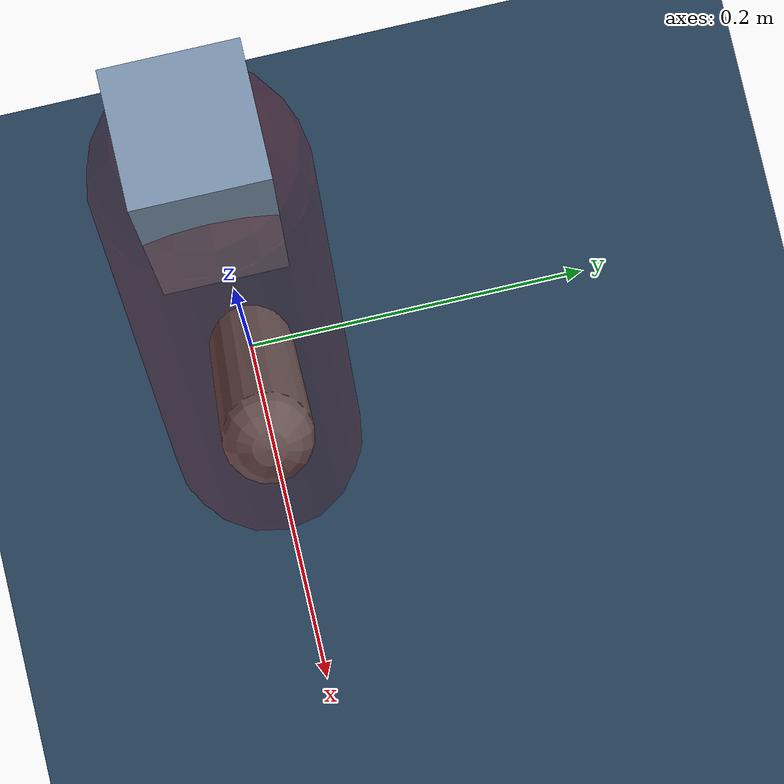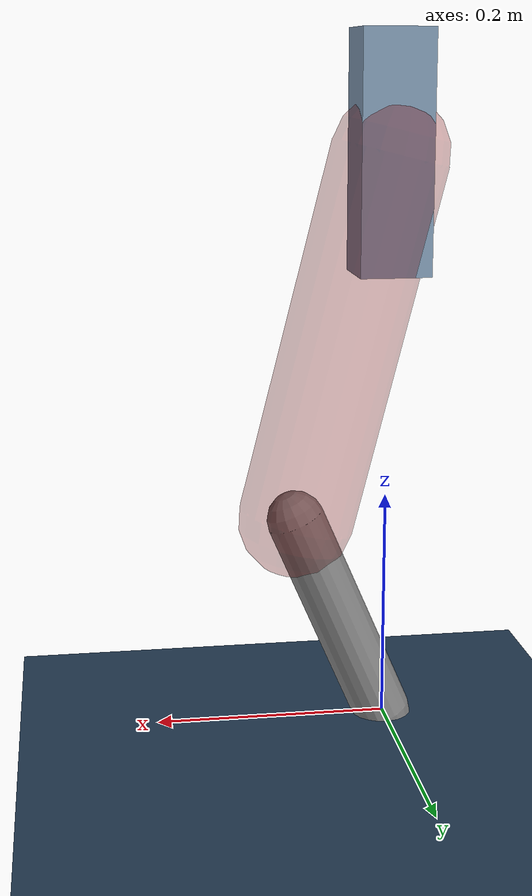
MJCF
<mujoco model="Hopper2D">
	<compiler inertiafromgeom="true" angle="radian" />
	<option timestep="0.001" integrator="implicit" cone="elliptic" solver="Newton" tolerance="1e-10" />

	<default>
		<geom contype="1" conaffinity="1" condim="3" friction="2 0.005 0.0001" solref="0.005 1" />
		<joint limited="true" damping="0.1" />
	</default>

	<asset>
		<texture name="skybox" type="skybox" builtin="gradient" rgb1=".4 .6 .8" rgb2="0 0 0" width="800" height="800" />
		<texture name="grid" type="2d" builtin="checker" rgb1=".1 .2 .3" rgb2=".2 .3 .4" width="300" height="300" mark="edge" markrgb=".2 .3 .4" />
		<material name="ground" texture="grid" texrepeat="1 1" texuniform="true" reflectance="0.1" />
		<material name="leg" rgba="0.5 0.6 0.7 1" />
	</asset>

	<worldbody>

		<geom name="floor" type="plane" size="5 5 0.25" material="ground" />

		<light directional="false" diffuse="0.8 0.8 0.8" specular="0.3 0.3 0.3" pos="0 0 2" dir="0 0 -1" />
		<light mode="targetbodycom" target="base" directional="false" diffuse="0.8 0.8 0.8" specular="0.3 0.3 0.3" pos="0 0 2" dir="0 0 -1" />

		<camera name="fixed" pos="0 -2 1" xyaxes="1 0 0 0 0 1" />
		<camera name="tracking" mode="trackcom" pos="0 -3 1" />

		<body name="root" pos="0 0 0.4928840669807908">
			<joint name="slide_x" type="slide" axis="1 0 0" range="-100 100" />
			<joint name="slide_z" type="slide" axis="0 0 1" range="0 10" />

			<body name="base" pos="0 0 0">
				<geom name="torso" type="box" size="0.03 0.03 0.1" mass="2.719" material="leg" />

				<body name="link1" pos="0 0 0" euler="0 1.3241736747524842 0">
					<joint type="hinge" axis="0 -1 0" pos="0 0 0" name="hinge1" limited="true" range="-3.14 3.14" stiffness="0" damping="0.1" />
					<geom name="thigh" type="capsule" fromto="0 0 0 0.3212970040523825 0 0" size="0.05" rgba="0.5 0 0 0.3" mass="1.0468019109414326" />

					<body name="link2" pos="0.3212970040523825 0 0" euler="0 0.6549321977819106 0">
						<joint type="hinge" axis="0 -1 0" pos="0 0 0" name="hinge2" limited="true" range="-3.14 3.14" stiffness="0" damping="0.1" />
						<geom name="shank" type="capsule" fromto="0 0 0 0.19754852240935533 0 0" size="0.025" mass="0.39883881792748427" />

					</body>
				</body>
			</body>
		</body>
	</worldbody>

	<actuator>
		<motor name="torque1" joint="hinge1" ctrlrange="-38.824350107772695 38.824350107772695" ctrllimited="true" gear="1" />
		<motor name="torque2" joint="hinge2" ctrlrange="-192.36613671476456 192.36613671476456" ctrllimited="true" gear="1" />
	</actuator>
</mujoco>
